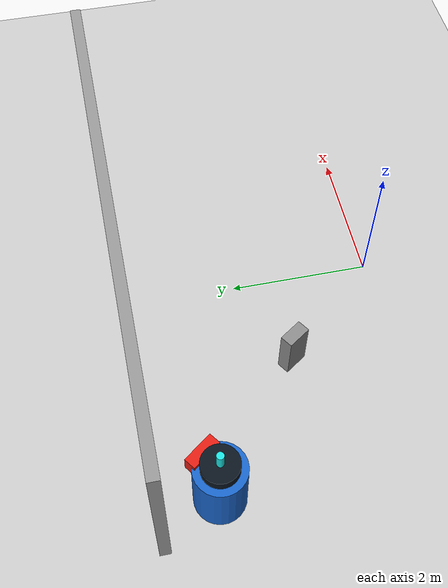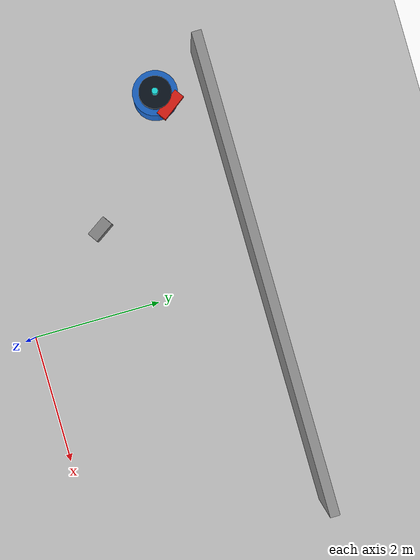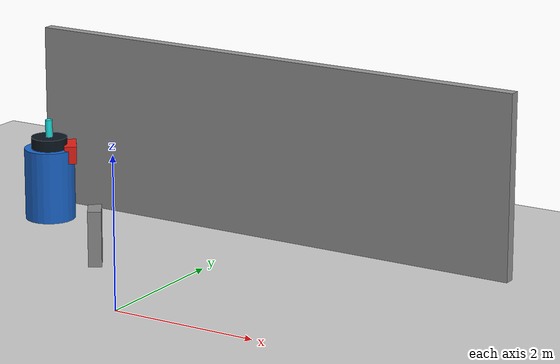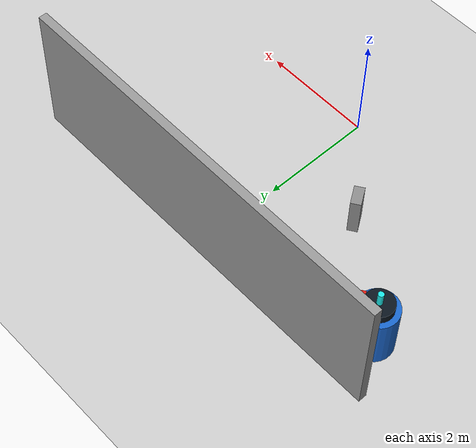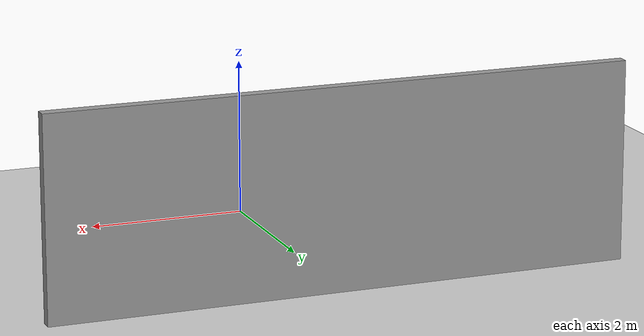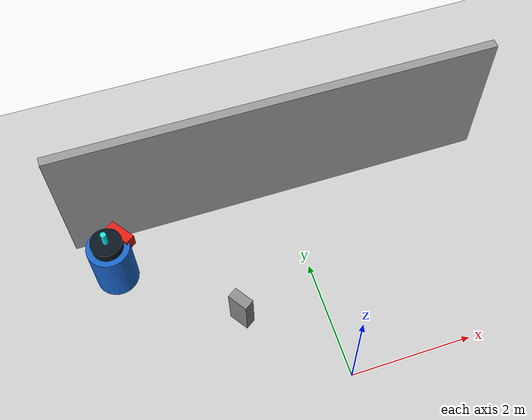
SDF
<sdf version="1.7">
 <world name="default">
  <plugin name="socnav_plugin" filename="libSocNavPlugin.so">
   <robot_name>robot</robot_name>
   <trajectory_file>/home/hunav_gz_classic_ws/SocNav3_trajectories/src6/000003839.json</trajectory_file>
   <human_slots>2</human_slots>
   <goal_angle_mesh>
    <angle_threshold>1.48190460033</angle_threshold>
    <uri>/home/hunav_gz_classic_ws/src/socnav_gazebo_reproducer/meshes/000003839_goal_angle_00.stl</uri>
   </goal_angle_mesh>
  </plugin>
  <light name="sun" type="directional">
   <pose>0 0 10 0 -0 0</pose>
   <diffuse>0.8 0.8 0.8 1</diffuse>
   <specular>0.2 0.2 0.2 1</specular>
   <attenuation>
    <range>1000</range>
    <constant>0.9</constant>
    <linear>0.01</linear>
    <quadratic>0.001</quadratic>
   </attenuation>
   <direction>-0.5 0.1 -0.9</direction>
   <spot><inner_angle>0</inner_angle><outer_angle>0</outer_angle><falloff>0</falloff></spot>
  </light>
  <model name="ground_plane">
   <static>1</static>
   <link name="link">
    <collision name="collision">
     <geometry><plane><normal>0 0 1</normal><size>100 100</size></plane></geometry>
     <surface><friction><ode><mu>100</mu><mu2>50</mu2></ode></friction></surface>
    </collision>
    <visual name="visual">
     <cast_shadows>0</cast_shadows>
     <geometry><plane><normal>0 0 1</normal><size>100 100</size></plane></geometry>
     <material>
      <script><uri>file://media/materials/scripts/kitchen.material</uri><name>Kitchen/CounterTop_H</name></script>
     </material>
    </visual>
   </link>
  </model>
  <gravity>0 0 -9.8</gravity>
  <magnetic_field>6e-06 2.3e-05 -4.2e-05</magnetic_field>
  <atmosphere type="adiabatic"/>
  <physics type="ode">
   <max_step_size>0.001</max_step_size>
   <real_time_factor>1</real_time_factor>
   <real_time_update_rate>1000</real_time_update_rate>
  </physics>
  <scene><ambient>0.4 0.4 0.4 1</ambient><background>0.7 0.7 0.7 1</background><shadows>1</shadows></scene>
  <audio><device>default</device></audio>
  <spherical_coordinates>
   <surface_model>EARTH_WGS84</surface_model>
   <latitude_deg>0</latitude_deg>
   <longitude_deg>0</longitude_deg>
   <elevation>0</elevation>
   <heading_deg>0</heading_deg>
  </spherical_coordinates>
  <model name="robot">
   <pose>-3.0676545099663657 2.8274124521683612 0.5 0 0 0.629464159492789</pose>
   <link name="link">
    <collision name="collision">
     <geometry><cylinder><radius>0.3468577402860004</radius><length>1.0</length></cylinder></geometry>
    </collision>
    <visual name="visual">
     <geometry><cylinder><radius>0.3468577402860004</radius><length>1.0</length></cylinder></geometry>
     <material><ambient>0.1 0.4 0.8 1</ambient><diffuse>0.1 0.4 0.8 1</diffuse></material>
    </visual>
    <visual name="robot_top">
     <pose>0 0 0.58 0 0 0</pose>
     <geometry><cylinder><radius>0.24973757300592028</radius><length>0.16</length></cylinder></geometry>
     <material><ambient>0.04 0.08 0.12 1</ambient><diffuse>0.04 0.08 0.12 1</diffuse></material>
    </visual>
    <visual name="robot_front">
     <pose>0.2913605018402403 0 0.44 0 0 0</pose>
     <geometry><box><size>0.1664917153372802 0.4439779075660805 0.24</size></box></geometry>
     <material><ambient>0.9 0.12 0.08 1</ambient><diffuse>0.9 0.12 0.08 1</diffuse></material>
    </visual>
    <visual name="robot_sensor">
     <pose>0 0 0.78 0 0 0</pose>
     <geometry><cylinder><radius>0.04856008364004006</radius><length>0.24</length></cylinder></geometry>
     <material><ambient>0.1 0.9 0.9 1</ambient><diffuse>0.1 0.9 0.9 1</diffuse></material>
    </visual>
   </link>
  </model>
  <model name="static_object_0">
   <static>true</static>
   <pose>-1.3300003955871662 1.4529525934588263 0.375 0 0 2.1580314423883475</pose>
   <link name="link">
    <collision name="collision"><geometry><box><size>0.35 0.18 0.75</size></box></geometry></collision>
    <visual name="visual">
     <geometry><box><size>0.35 0.18 0.75</size></box></geometry>
     <material><ambient>0.55 0.55 0.55 1</ambient><diffuse>0.55 0.55 0.55 1</diffuse></material>
    </visual>
   </link>
  </model>
  <model name="simple_world_test">
   <link name="Wall_0">
    <collision name="Wall_0_Collision">
     <geometry><box><size>7.272488106134717 0.15 2.5</size></box></geometry>
     <pose>0 0 1.25 0 -0 0</pose>
    </collision>
    <visual name="Wall_0_Visual">
     <pose>0 0 1.25 0 -0 0</pose>
     <geometry><box><size>7.272488106134717 0.15 2.5</size></box></geometry>
     <material>
      <script><uri>file://media/materials/scripts/gazebo.material</uri><name>Gazebo/Grey</name></script>
      <ambient>1 1 1 1</ambient>
     </material>
     <meta><layer>0</layer></meta>
    </visual>
    <pose>0.0 3.6262440530673588 0 0 -0 0.0</pose>
   </link>
   <static>1</static>
  </model>
 </world>
</sdf>
